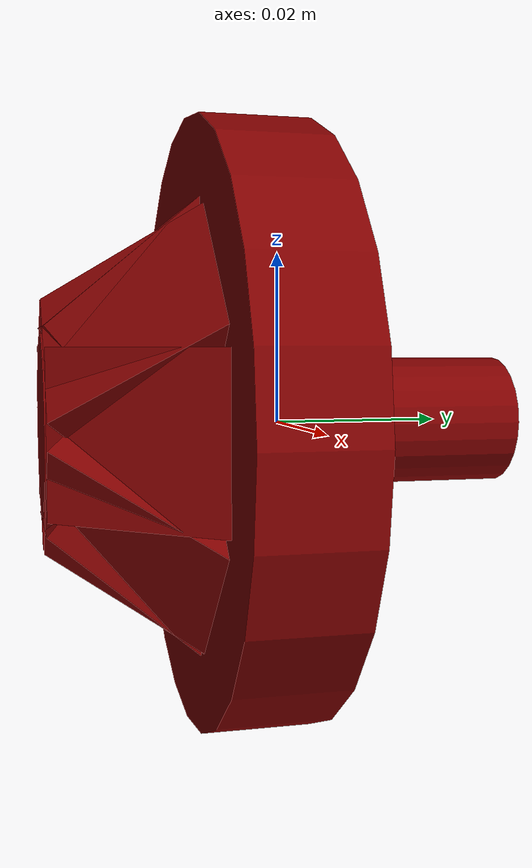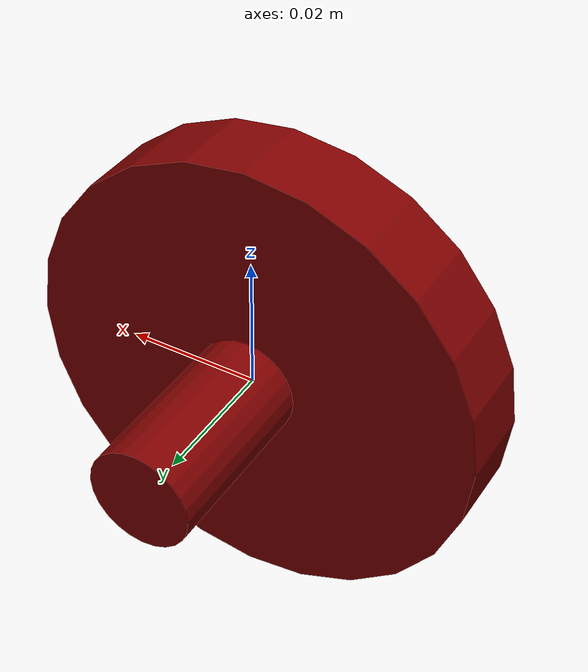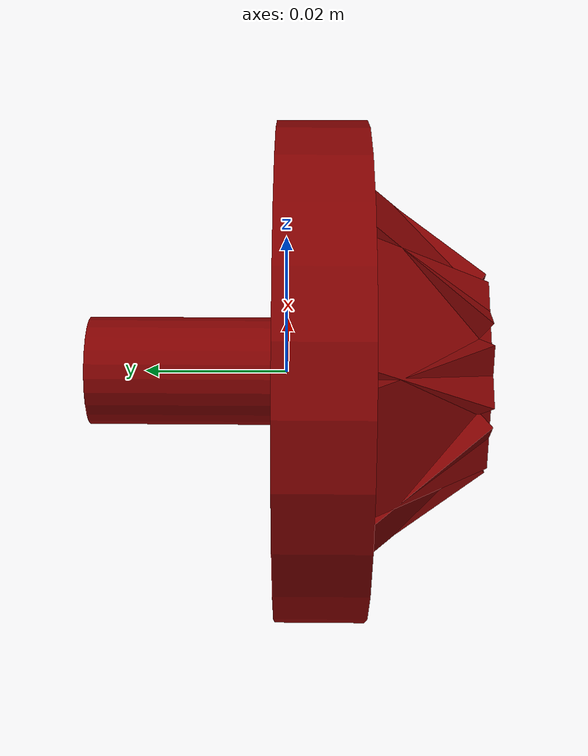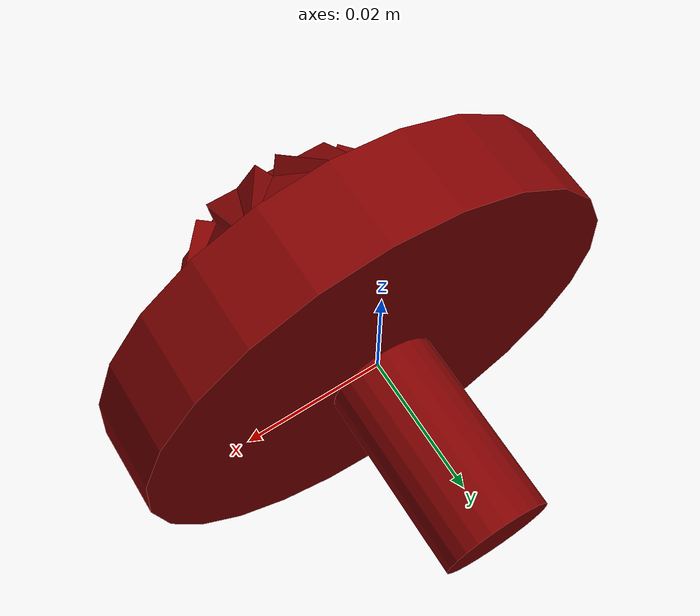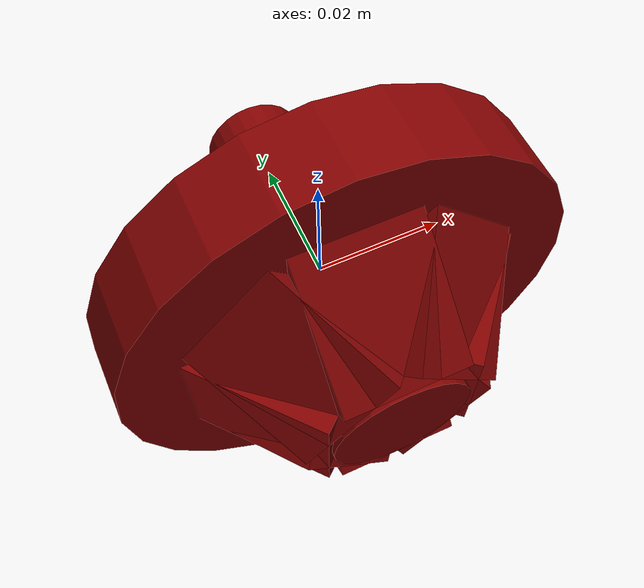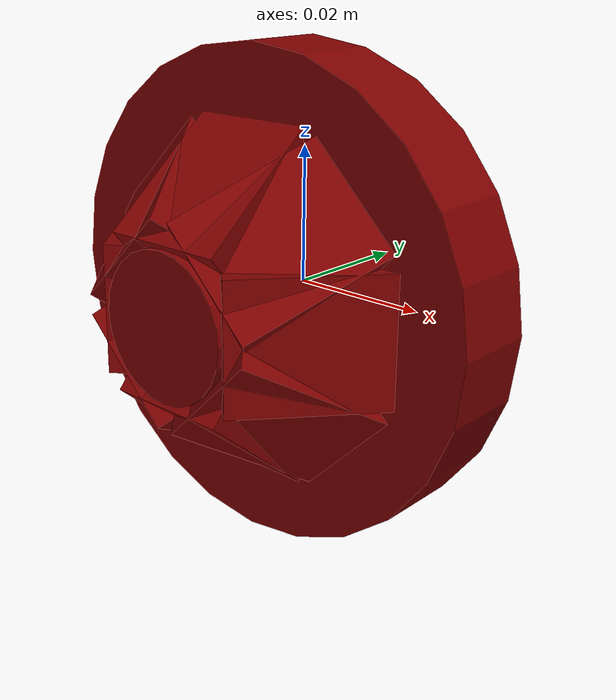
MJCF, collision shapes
<?xml version='1.0' encoding='UTF-8'?>
<mujoco model="model">
  <option timestep="0.002" gravity="0.0 0.0 -9.81"/>
  <compiler angle="radian"/>
  <asset>
    <mesh file="visuals/CabinetHandle036.obj" name="CabinetHandle036_vis"/>
    <texture file="visuals/T_BC001.png" name="tex" type="2d"/>
    <material name="mat" rgba="1 1 1 1.0" texture="tex" shininess="0.4472135901451111" specular="0.3103448502657381"/>
  </asset>
  <default>
    <default class="visual">
      <geom conaffinity="0" contype="0" group="1" type="mesh"/>
    </default>
    <default class="collision">
      <geom group="0" rgba="0.5 0 0 0.5" density="1.0" solref="0.004 1" solimp="0.998 0.998 0.001"/>
    </default>
    <default class="spawn">
      <geom group="0" rgba="1 1 1 0.5" contype="0" conaffinity="0"/>
      <site group="0" rgba="1 1 1 0.5"/>
    </default>
    <default class="region">
      <geom group="1" conaffinity="0" contype="0" rgba="0 1 0 0" mass="0"/>
    </default>
  </default>
  <worldbody>
    <body>
      <body name="object">
        <geom mesh="CabinetHandle036_vis" type="mesh" solimp="0.998 0.998 0.001" solref="0.001 1" friction="0.95 0.3 0.1" class="visual" material="mat"/>
        <geom type="cylinder" pos="0.0 -0.0048188683576881886 3.638144507878138e-10" size="0.03510913625359535 0.006224796641618013" quat="0.7071068286895752 0.7071067690849304 0.0 0.0" class="collision"/>
        <geom type="cylinder" pos="0.00018008383631240577 0.01457275915890932 -1.1002124766790189e-09" size="0.007632123306393623 0.0131168682128191" quat="0.7071068286895752 0.7071067690849304 0.0 0.0" class="collision"/>
        <geom type="box" pos="0.00016015159781090915 -0.01602323353290558 0.01651105470955372" size="0.009154416620731354 0.01229102537035942 0.003340677823871374" quat="0.9396926164627075 0.3420201539993286 0.0 0.0" class="collision"/>
        <geom type="cylinder" pos="0.0 -0.024420004338026047 1.8436593363091447e-09" size="0.010477656498551369 0.003289910964667797" quat="0.7071068286895752 0.7071067690849304 0.0 0.0" class="collision"/>
        <geom type="box" pos="0.00016015159781090915 -0.01602323353290558 -0.016511056572198868" size="0.009154416620731354 0.01229102537035942 0.003340677823871374" quat="0.9396926164627075 -0.3420201539993286 -0.0 0.0" class="collision"/>
        <geom type="box" pos="-0.016511056572198868 -0.01602323353290558 -0.00016015283472370356" size="0.009154416620731354 0.012291024439036846 0.003340677823871374" quat="0.6644630432128906 -0.24184481799602509 0.6644629836082458 0.2418448030948639" class="collision"/>
        <geom type="box" pos="0.01651105470955372 -0.01602323353290558 -0.00016015036089811474" size="0.009154416620731354 0.012291024439036846 0.003340677823871374" quat="0.6644630432128906 0.24184481799602509 0.6644629836082458 -0.2418448030948639" class="collision"/>
        <geom type="box" pos="0.011788319796323776 -0.016023235395550728 0.011561836116015911" size="0.009154416620731354 0.012291024439036846 0.003340677823871374" quat="0.8681626319885254 0.3159855902194977 0.3596048653125763 -0.13088563084602356" class="collision"/>
        <geom type="box" pos="-0.011561838909983635 -0.01602322980761528 -0.011788328178226948" size="0.009154416620731354 0.012291023507714272 0.003340677823871374" quat="0.8681628108024597 -0.3159853219985962 0.35960477590560913 0.13088534772396088" class="collision"/>
        <geom type="box" pos="-0.011788330040872097 -0.01602322980761528 0.011561836116015911" size="0.009154416620731354 0.012291023507714272 0.003340677823871374" quat="0.3596048951148987 -0.13088546693325043 0.8681628108024597 0.3159852623939514" class="collision"/>
        <geom type="box" pos="0.01156183797866106 -0.016023237258195877 -0.011788317933678627" size="0.009154416620731354 0.012291024439036846 0.003340677823871374" quat="0.3596048951148987 0.13088549673557281 0.8681626915931702 -0.3159855008125305" class="collision"/>
        <geom class="region" name="reg_main" type="box" pos="0.0 0.0 0.0" size="0.0358505973815918 0.02860979160666466 0.0358505936563015"/>
      </body>
    </body>
  </worldbody>
  <actuator/>
</mujoco>
